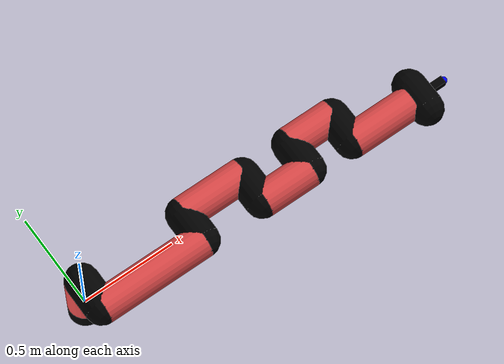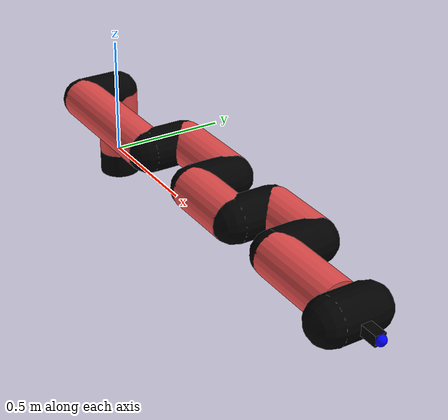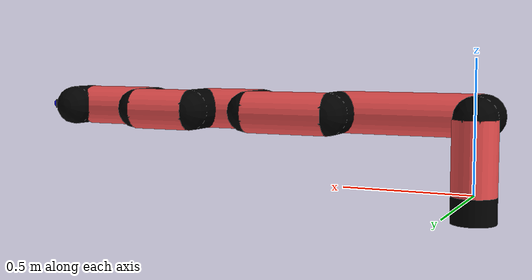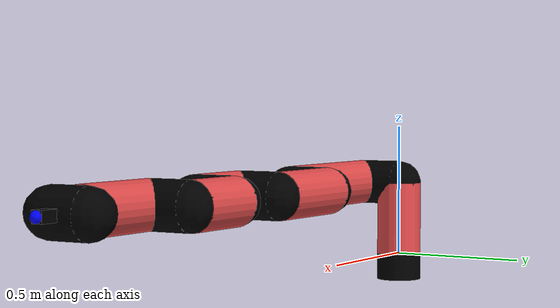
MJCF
<mujoco model="manipulator">
		<compiler angle="degree" coordinate="local" inertiafromgeom="auto" meshdir="meshes/"/>
		<option gravity="0 0 0" integrator="RK4" iterations="30" timestep="0.01"/>

		<default>
		<joint armature="1" limited="true" stiffness="10" damping="15" frictionloss="5.0"/>
		<geom conaffinity="1" condim="3" contype="1" friction=".5 .1 .1" margin="0.002"/>
		<motor ctrllimited="true"/>
		<position ctrllimited="true"/>
		</default>

		<asset>
		<texture builtin="gradient" height="100" rgb1="1.0 1.0 1.0" rgb2="1.0 1.0 1.0" type="skybox" width="100"/>
		<texture builtin="flat" height="32" name="arm_tex" rgb1="0.9 0.3 0.3" type="2d" width="32"/>
		<texture builtin="flat" height="32" name="gripper_tex" rgb1="0.0 0.0 0.0" type="cube" width="32"/>

		<material name="arm_mat" shininess="0.1" specular="0.1" texture="arm_tex"/>
		<material name="gripper_mat" shininess="1" specular="1" texture="gripper_tex"/>
		</asset>

		<worldbody>
		<light cutoff="45" diffuse=".8 .8 .8" dir="0 0.16 -1" directional="false" name="light" pos="0 -2.0 8.0" specular="0.3 0.3 0.3"/>

		<body name="base_link" pos="0 0 -0.1">
		<geom fromto="0 0 0 0 0 0.1" material="arm_mat" name="base_link" rgba="0.0 0.0 0.0 1" size="0.085" type="cylinder"/>
		</body>

		<body name="l1" pos="0 0 0">
<geom fromto="0 0 0 0 0 0.28" material="arm_mat" name="l1" rgba="0.9 0.3 0.3 1" size="0.085" type="cylinder"/>
<geom fromto="0 0 0.28 0 -0.16 0.28" material="arm_mat" name="l1_ex" rgba="0.0 0.0 0.0 1" size="0.085" type="capsule"/>
<joint axis="0 0 1" name="j1" pos="0 0 0" range="-90 90" damping="35.01" frictionloss="10.63"/>

<body name="l2" pos="0 -0.16 0.28">
<geom fromto="0 0 0 0.57 0 0" material="arm_mat" name="l2" rgba="0.9 0.3 0.3 1" size="0.085" type="cylinder"/>
<geom fromto="0.57 0 0 0.57 0.16 0" material="arm_mat" name="l2_ex" rgba="0.0 0.0 0.0 1" size="0.085" type="capsule"/>
<joint axis="0.0 1.0 0.0" name="j2" pos="0 0 0" range="-90 60" damping="33.88" frictionloss="9.03"/>

<body name="l3" pos="0.57 0.16 0">
<geom fromto="0 0 0 0.34 0 0" material="arm_mat" name="l3" rgba="0.9 0.3 0.3 1" size="0.085" type="cylinder"/>
<geom fromto="0.34 0 0 0.34 -0.16 0" material="arm_mat" name="l3_ex" rgba="0.0 0.0 0.0 1" size="0.085" type="capsule"/>
<joint axis="0.0 1.0 0.0" name="j3" pos="0 0 0" range="-30 60" damping="36.56" frictionloss="8.6"/>

<body name="l4" pos="0.34 -0.16 0">
<geom fromto="0 0 0 0.27 0 0" material="arm_mat" name="l4" rgba="0.9 0.3 0.3 1" size="0.085" type="cylinder"/>
<geom fromto="0.27 0 0 0.27 0.16 0" material="arm_mat" name="l4_ex" rgba="0.0 0.0 0.0 1" size="0.085" type="capsule"/>
<joint axis="0.0 1.0 0.0" name="j4" pos="0 0 0" range="-30 60" damping="37.0" frictionloss="7.75"/>

<body name="l5" pos="0.27 0.16 0">
<geom fromto="0 0 0 0.25 0 0" material="arm_mat" name="l5" rgba="0.9 0.3 0.3 1" size="0.085" type="cylinder"/>
<geom fromto="0.25 0 0 0.25 -0.16 0" material="arm_mat" name="l5_ex" rgba="0.0 0.0 0.0 1" size="0.085" type="capsule"/>
<joint axis="0.0 1.0 0.0" name="j5" pos="0 0 0" range="-30 60" damping="29.44" frictionloss="12.33"/>

<body name="l6" pos="0.25 -0.16 0">
<geom fromto="0 0 0 0.34 0 0" material="arm_mat" name="l6" rgba="0.9 0.3 0.3 1" size="0.085" type="cylinder"/>
<joint axis="0.0 1.0 0.0" name="j6" pos="0 0 0" range="-30 60" damping="30.38" frictionloss="11.95"/>

<body name="gripper" pos="0.34 0 0">
<geom fromto="0.05 -0.07 0 0.05 0.07 0" material="gripper_mat" name="gripper" rgba="0.0 0.0 0.0 1" size="0.085" type="capsule"/><joint axis="1 0 0" name="j7" pos="0 0 0" range="-90 90" damping="15" frictionloss="5.0"/><body name="finger" pos="0.1 0 0">
<geom fromto="0 0.0 0 0.1 0.0 0" material="gripper_mat" name="finger" rgba="0.0 0.0 0.0 1" size="0.020 0.06 0.06" type="box"/>
</body>
<site name="current" pos="0.2 0. 0.0" rgba="0. 0. 1.0 1" size="0.02" type="sphere"/>
</body>
</body>
</body>
</body>
</body>
</body>
</body>
</worldbody>
<actuator>
<motor ctrllimited="true" ctrlrange="-1.0 1.0" joint="j1" gear="63.79"/>
<motor ctrllimited="true" ctrlrange="-1.0 1.0" joint="j2" gear="66.93"/>
<motor ctrllimited="true" ctrlrange="-1.0 1.0" joint="j3" gear="73.2"/>
<motor ctrllimited="true" ctrlrange="-1.0 1.0" joint="j4" gear="60.74"/>
<motor ctrllimited="true" ctrlrange="-1.0 1.0" joint="j5" gear="61.47"/>
<motor ctrllimited="true" ctrlrange="-1.0 1.0" joint="j6" gear="98.56"/>
<motor ctrllimited="true" ctrlrange="-1.0 1.0" joint="j7" gear="80"/>
</actuator>
</mujoco>
